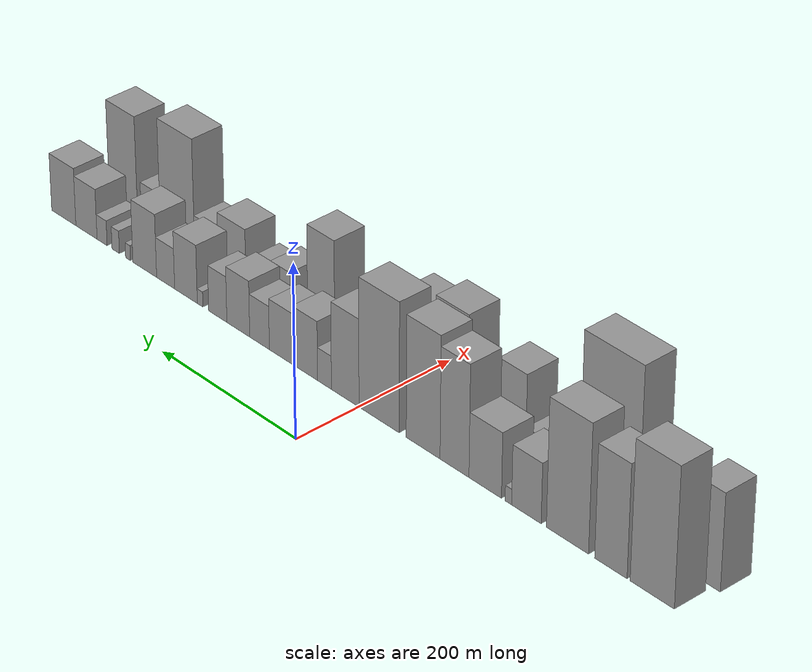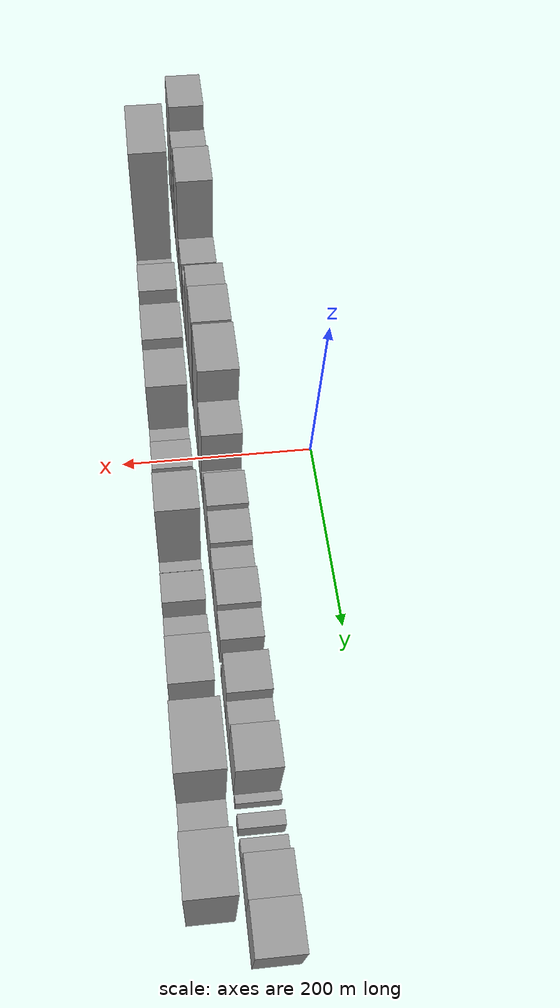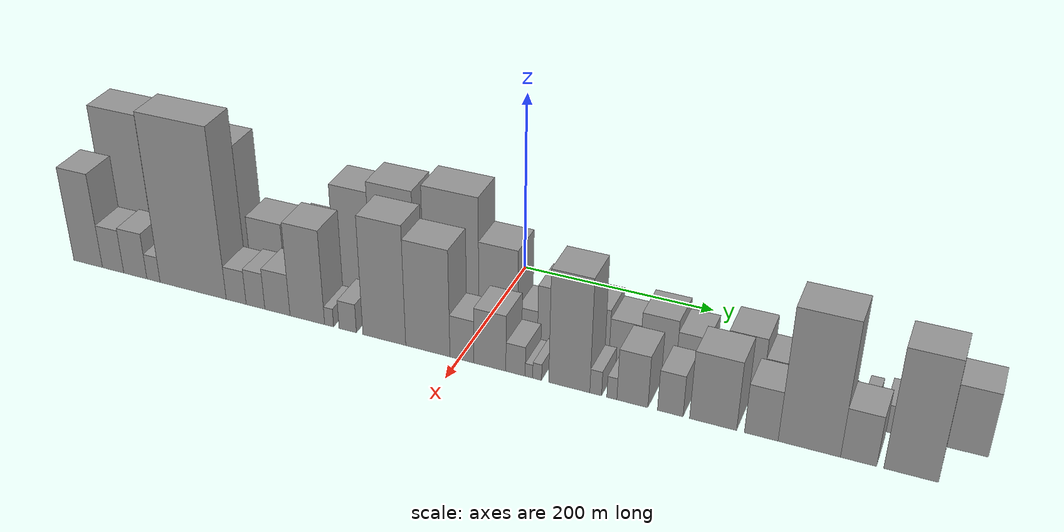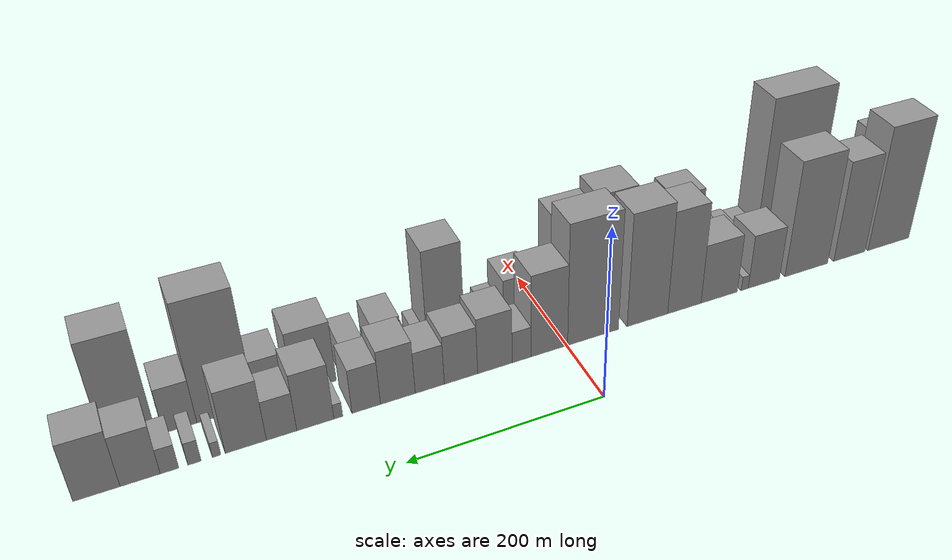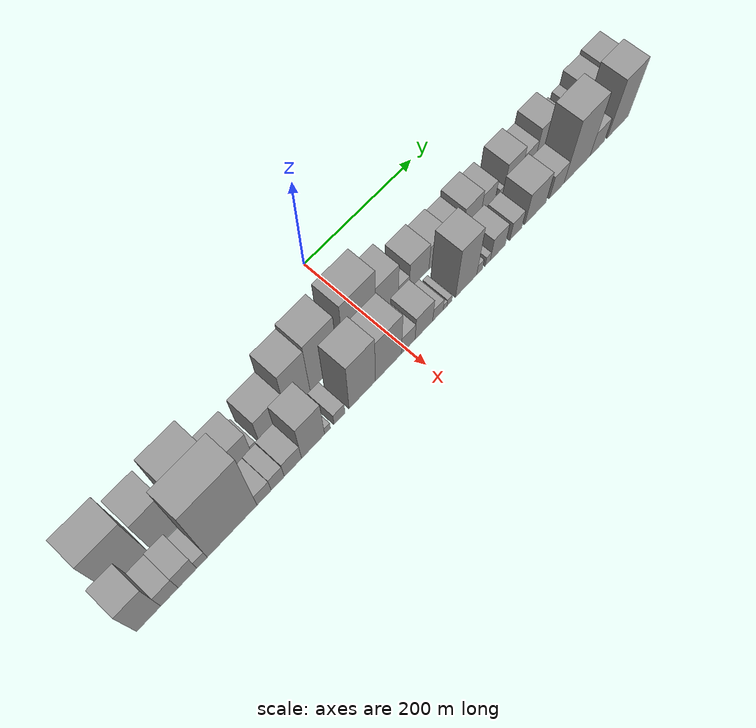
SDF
<sdf version="1.6">
 <world name="default">
  <scene>
   <sky><clouds><speed>12</speed></clouds></sky>
   <ambient>0.4 0.4 0.4 1</ambient>
   <background>0.7 0.7 0.7 1</background>
   <shadows>1</shadows>
  </scene>
  <gravity>0 0 -9.8066</gravity>
  <magnetic_field>6e-06 2.3e-05 -4.2e-05</magnetic_field>
  <physics default="0" name="default_physics" type="ode">
   <ode>
    <solver>
     <type>quick</type>
     <iters>10</iters>
     <sor>1.0</sor>
     <use_dynamic_moi_rescaling>0</use_dynamic_moi_rescaling>
    </solver>
    <constraints>
     <cfm>0</cfm>
     <erp>0.2</erp>
     <contact_max_correcting_vel>100</contact_max_correcting_vel>
     <contact_surface_layer>0.001</contact_surface_layer>
    </constraints>
   </ode>
   <max_step_size>0.004</max_step_size>
   <real_time_factor>1</real_time_factor>
   <real_time_update_rate>250</real_time_update_rate>
  </physics>
  <light name="sun" type="directional">
   <pose>0 0 10 0 0 0</pose>
   <diffuse>0.8 0.8 0.8 1</diffuse>
   <specular>0.2 0.2 0.2 1</specular>
   <attenuation>
    <range>1000</range>
    <constant>0.9</constant>
    <linear>0.01</linear>
    <quadratic>0.001</quadratic>
   </attenuation>
   <direction>-0.5 0.1 -0.9</direction>
  </light>
  <model name="building_1">
   <static>1</static>
   <pose>100.0000 -399.7099 0 0.000000 0.000000 0.000000</pose>
   <link name="link">
    <pose>0 0 79.50 0 0 0</pose>
    <collision name="collision"><geometry><box><size>40.0000 56.5801 159.0000</size></box></geometry></collision>
    <visual name="visual">
     <cast_shadows>0</cast_shadows>
     <geometry><box><size>40.0000 56.5801 159.0000</size></box></geometry>
     <material>
      <script>
       <uri>model://grey_wall/materials/scripts</uri>
       <uri>model://grey_wall/materials/textures</uri>
       <name>vrc/grey_wall</name>
      </script>
     </material>
    </visual>
   </link>
  </model>
  <model name="building_2">
   <static>1</static>
   <pose>100.0000 -346.3536 0 0.000000 0.000000 0.000000</pose>
   <link name="link">
    <pose>0 0 64.50 0 0 0</pose>
    <collision name="collision"><geometry><box><size>40.0000 42.1325 129.0000</size></box></geometry></collision>
    <visual name="visual">
     <cast_shadows>0</cast_shadows>
     <geometry><box><size>40.0000 42.1325 129.0000</size></box></geometry>
     <material>
      <script>
       <uri>model://grey_wall/materials/scripts</uri>
       <uri>model://grey_wall/materials/textures</uri>
       <name>vrc/grey_wall</name>
      </script>
     </material>
    </visual>
   </link>
  </model>
  <model name="building_3">
   <static>1</static>
   <pose>100.0000 -289.3417 0 0.000000 0.000000 0.000000</pose>
   <link name="link">
    <pose>0 0 73.50 0 0 0</pose>
    <collision name="collision"><geometry><box><size>40.0000 55.8913 147.0000</size></box></geometry></collision>
    <visual name="visual">
     <cast_shadows>0</cast_shadows>
     <geometry><box><size>40.0000 55.8913 147.0000</size></box></geometry>
     <material>
      <script>
       <uri>model://grey_wall/materials/scripts</uri>
       <uri>model://grey_wall/materials/textures</uri>
       <name>vrc/grey_wall</name>
      </script>
     </material>
    </visual>
   </link>
  </model>
  <model name="building_4">
   <static>1</static>
   <pose>100.0000 -234.5111 0 0.000000 0.000000 0.000000</pose>
   <link name="link">
    <pose>0 0 34.50 0 0 0</pose>
    <collision name="collision"><geometry><box><size>40.0000 39.7700 69.0000</size></box></geometry></collision>
    <visual name="visual">
     <cast_shadows>0</cast_shadows>
     <geometry><box><size>40.0000 39.7700 69.0000</size></box></geometry>
     <material>
      <script>
       <uri>model://grey_wall/materials/scripts</uri>
       <uri>model://grey_wall/materials/textures</uri>
       <name>vrc/grey_wall</name>
      </script>
     </material>
    </visual>
   </link>
  </model>
  <model name="building_5">
   <static>1</static>
   <pose>100.0000 -210.2115 0 0.000000 0.000000 0.000000</pose>
   <link name="link">
    <pose>0 0 9.00 0 0 0</pose>
    <collision name="collision"><geometry><box><size>40.0000 8.8292 18.0000</size></box></geometry></collision>
    <visual name="visual">
     <cast_shadows>0</cast_shadows>
     <geometry><box><size>40.0000 8.8292 18.0000</size></box></geometry>
     <material>
      <script>
       <uri>model://grey_wall/materials/scripts</uri>
       <uri>model://grey_wall/materials/textures</uri>
       <name>vrc/grey_wall</name>
      </script>
     </material>
    </visual>
   </link>
  </model>
  <model name="building_6">
   <static>1</static>
   <pose>100.0000 -178.4831 0 0.000000 0.000000 0.000000</pose>
   <link name="link">
    <pose>0 0 37.50 0 0 0</pose>
    <collision name="collision"><geometry><box><size>40.0000 44.6277 75.0000</size></box></geometry></collision>
    <visual name="visual">
     <cast_shadows>0</cast_shadows>
     <geometry><box><size>40.0000 44.6277 75.0000</size></box></geometry>
     <material>
      <script>
       <uri>model://grey_wall/materials/scripts</uri>
       <uri>model://grey_wall/materials/textures</uri>
       <name>vrc/grey_wall</name>
      </script>
     </material>
    </visual>
   </link>
  </model>
  <model name="building_7">
   <static>1</static>
   <pose>100.0000 -136.0635 0 0.000000 0.000000 0.000000</pose>
   <link name="link">
    <pose>0 0 64.50 0 0 0</pose>
    <collision name="collision"><geometry><box><size>40.0000 40.2114 129.0000</size></box></geometry></collision>
    <visual name="visual">
     <cast_shadows>0</cast_shadows>
     <geometry><box><size>40.0000 40.2114 129.0000</size></box></geometry>
     <material>
      <script>
       <uri>model://grey_wall/materials/scripts</uri>
       <uri>model://grey_wall/materials/textures</uri>
       <name>vrc/grey_wall</name>
      </script>
     </material>
    </visual>
   </link>
  </model>
  <model name="building_8">
   <static>1</static>
   <pose>100.0000 -92.1306 0 0.000000 0.000000 0.000000</pose>
   <link name="link">
    <pose>0 0 70.50 0 0 0</pose>
    <collision name="collision"><geometry><box><size>40.0000 47.6545 141.0000</size></box></geometry></collision>
    <visual name="visual">
     <cast_shadows>0</cast_shadows>
     <geometry><box><size>40.0000 47.6545 141.0000</size></box></geometry>
     <material>
      <script>
       <uri>model://grey_wall/materials/scripts</uri>
       <uri>model://grey_wall/materials/textures</uri>
       <name>vrc/grey_wall</name>
      </script>
     </material>
    </visual>
   </link>
  </model>
  <model name="building_9">
   <static>1</static>
   <pose>100.0000 -29.4256 0 0.000000 0.000000 0.000000</pose>
   <link name="link">
    <pose>0 0 75.00 0 0 0</pose>
    <collision name="collision"><geometry><box><size>40.0000 57.7554 150.0000</size></box></geometry></collision>
    <visual name="visual">
     <cast_shadows>0</cast_shadows>
     <geometry><box><size>40.0000 57.7554 150.0000</size></box></geometry>
     <material>
      <script>
       <uri>model://grey_wall/materials/scripts</uri>
       <uri>model://grey_wall/materials/textures</uri>
       <name>vrc/grey_wall</name>
      </script>
     </material>
    </visual>
   </link>
  </model>
  <model name="building_10">
   <static>1</static>
   <pose>100.0000 19.5741 0 0.000000 0.000000 0.000000</pose>
   <link name="link">
    <pose>0 0 51.00 0 0 0</pose>
    <collision name="collision"><geometry><box><size>40.0000 40.2440 102.0000</size></box></geometry></collision>
    <visual name="visual">
     <cast_shadows>0</cast_shadows>
     <geometry><box><size>40.0000 40.2440 102.0000</size></box></geometry>
     <material>
      <script>
       <uri>model://grey_wall/materials/scripts</uri>
       <uri>model://grey_wall/materials/textures</uri>
       <name>vrc/grey_wall</name>
      </script>
     </material>
    </visual>
   </link>
  </model>
  <model name="building_11">
   <static>1</static>
   <pose>100.0000 49.9084 0 0.000000 0.000000 0.000000</pose>
   <link name="link">
    <pose>0 0 19.50 0 0 0</pose>
    <collision name="collision"><geometry><box><size>40.0000 20.4247 39.0000</size></box></geometry></collision>
    <visual name="visual">
     <cast_shadows>0</cast_shadows>
     <geometry><box><size>40.0000 20.4247 39.0000</size></box></geometry>
     <material>
      <script>
       <uri>model://grey_wall/materials/scripts</uri>
       <uri>model://grey_wall/materials/textures</uri>
       <name>vrc/grey_wall</name>
      </script>
     </material>
    </visual>
   </link>
  </model>
  <model name="building_12">
   <static>1</static>
   <pose>100.0000 78.6043 0 0.000000 0.000000 0.000000</pose>
   <link name="link">
    <pose>0 0 34.50 0 0 0</pose>
    <collision name="collision"><geometry><box><size>40.0000 36.9671 69.0000</size></box></geometry></collision>
    <visual name="visual">
     <cast_shadows>0</cast_shadows>
     <geometry><box><size>40.0000 36.9671 69.0000</size></box></geometry>
     <material>
      <script>
       <uri>model://grey_wall/materials/scripts</uri>
       <uri>model://grey_wall/materials/textures</uri>
       <name>vrc/grey_wall</name>
      </script>
     </material>
    </visual>
   </link>
  </model>
  <model name="building_13">
   <static>1</static>
   <pose>100.0000 114.5251 0 0.000000 0.000000 0.000000</pose>
   <link name="link">
    <pose>0 0 30.00 0 0 0</pose>
    <collision name="collision"><geometry><box><size>40.0000 34.8745 60.0000</size></box></geometry></collision>
    <visual name="visual">
     <cast_shadows>0</cast_shadows>
     <geometry><box><size>40.0000 34.8745 60.0000</size></box></geometry>
     <material>
      <script>
       <uri>model://grey_wall/materials/scripts</uri>
       <uri>model://grey_wall/materials/textures</uri>
       <name>vrc/grey_wall</name>
      </script>
     </material>
    </visual>
   </link>
  </model>
  <model name="building_14">
   <static>1</static>
   <pose>100.0000 146.8696 0 0.000000 0.000000 0.000000</pose>
   <link name="link">
    <pose>0 0 25.50 0 0 0</pose>
    <collision name="collision"><geometry><box><size>40.0000 29.8143 51.0000</size></box></geometry></collision>
    <visual name="visual">
     <cast_shadows>0</cast_shadows>
     <geometry><box><size>40.0000 29.8143 51.0000</size></box></geometry>
     <material>
      <script>
       <uri>model://grey_wall/materials/scripts</uri>
       <uri>model://grey_wall/materials/textures</uri>
       <name>vrc/grey_wall</name>
      </script>
     </material>
    </visual>
   </link>
  </model>
  <model name="building_15">
   <static>1</static>
   <pose>100.0000 179.2516 0 0.000000 0.000000 0.000000</pose>
   <link name="link">
    <pose>0 0 33.00 0 0 0</pose>
    <collision name="collision"><geometry><box><size>40.0000 34.9497 66.0000</size></box></geometry></collision>
    <visual name="visual">
     <cast_shadows>0</cast_shadows>
     <geometry><box><size>40.0000 34.9497 66.0000</size></box></geometry>
     <material>
      <script>
       <uri>model://grey_wall/materials/scripts</uri>
       <uri>model://grey_wall/materials/textures</uri>
       <name>vrc/grey_wall</name>
      </script>
     </material>
    </visual>
   </link>
  </model>
  <model name="building_16">
   <static>1</static>
   <pose>100.0000 210.7764 0 0.000000 0.000000 0.000000</pose>
   <link name="link">
    <pose>0 0 27.00 0 0 0</pose>
    <collision name="collision"><geometry><box><size>40.0000 28.0998 54.0000</size></box></geometry></collision>
    <visual name="visual">
     <cast_shadows>0</cast_shadows>
     <geometry><box><size>40.0000 28.0998 54.0000</size></box></geometry>
     <material>
      <script>
       <uri>model://grey_wall/materials/scripts</uri>
       <uri>model://grey_wall/materials/textures</uri>
       <name>vrc/grey_wall</name>
      </script>
     </material>
    </visual>
   </link>
  </model>
  <model name="building_17">
   <static>1</static>
   <pose>100.0000 238.1311 0 0.000000 0.000000 0.000000</pose>
   <link name="link">
    <pose>0 0 9.00 0 0 0</pose>
    <collision name="collision"><geometry><box><size>40.0000 8.6098 18.0000</size></box></geometry></collision>
    <visual name="visual">
     <cast_shadows>0</cast_shadows>
     <geometry><box><size>40.0000 8.6098 18.0000</size></box></geometry>
     <material>
      <script>
       <uri>model://grey_wall/materials/scripts</uri>
       <uri>model://grey_wall/materials/textures</uri>
       <name>vrc/grey_wall</name>
      </script>
     </material>
    </visual>
   </link>
  </model>
  <model name="building_18">
   <static>1</static>
   <pose>100.0000 260.2070 0 0.000000 0.000000 0.000000</pose>
   <link name="link">
    <pose>0 0 34.50 0 0 0</pose>
    <collision name="collision"><geometry><box><size>40.0000 35.5419 69.0000</size></box></geometry></collision>
    <visual name="visual">
     <cast_shadows>0</cast_shadows>
     <geometry><box><size>40.0000 35.5419 69.0000</size></box></geometry>
     <material>
      <script>
       <uri>model://grey_wall/materials/scripts</uri>
       <uri>model://grey_wall/materials/textures</uri>
       <name>vrc/grey_wall</name>
      </script>
     </material>
    </visual>
   </link>
  </model>
  <model name="building_19">
   <static>1</static>
   <pose>100.0000 292.2404 0 0.000000 0.000000 0.000000</pose>
   <link name="link">
    <pose>0 0 24.00 0 0 0</pose>
    <collision name="collision"><geometry><box><size>40.0000 28.5249 48.0000</size></box></geometry></collision>
    <visual name="visual">
     <cast_shadows>0</cast_shadows>
     <geometry><box><size>40.0000 28.5249 48.0000</size></box></geometry>
     <material>
      <script>
       <uri>model://grey_wall/materials/scripts</uri>
       <uri>model://grey_wall/materials/textures</uri>
       <name>vrc/grey_wall</name>
      </script>
     </material>
    </visual>
   </link>
  </model>
  <model name="building_20">
   <static>1</static>
   <pose>100.0000 325.4531 0 0.000000 0.000000 0.000000</pose>
   <link name="link">
    <pose>0 0 37.50 0 0 0</pose>
    <collision name="collision"><geometry><box><size>40.0000 37.9005 75.0000</size></box></geometry></collision>
    <visual name="visual">
     <cast_shadows>0</cast_shadows>
     <geometry><box><size>40.0000 37.9005 75.0000</size></box></geometry>
     <material>
      <script>
       <uri>model://grey_wall/materials/scripts</uri>
       <uri>model://grey_wall/materials/textures</uri>
       <name>vrc/grey_wall</name>
      </script>
     </material>
    </visual>
   </link>
  </model>
  <model name="building_21">
   <static>1</static>
   <pose>100.0000 352.2698 0 0.000000 0.000000 0.000000</pose>
   <link name="link">
    <pose>0 0 9.00 0 0 0</pose>
    <collision name="collision"><geometry><box><size>40.0000 7.7330 18.0000</size></box></geometry></collision>
    <visual name="visual">
     <cast_shadows>0</cast_shadows>
     <geometry><box><size>40.0000 7.7330 18.0000</size></box></geometry>
     <material>
      <script>
       <uri>model://grey_wall/materials/scripts</uri>
       <uri>model://grey_wall/materials/textures</uri>
       <name>vrc/grey_wall</name>
      </script>
     </material>
    </visual>
   </link>
  </model>
  <model name="building_22">
   <static>1</static>
   <pose>100.0000 372.1016 0 0.000000 0.000000 0.000000</pose>
   <link name="link">
    <pose>0 0 13.50 0 0 0</pose>
    <collision name="collision"><geometry><box><size>40.0000 11.9305 27.0000</size></box></geometry></collision>
    <visual name="visual">
     <cast_shadows>0</cast_shadows>
     <geometry><box><size>40.0000 11.9305 27.0000</size></box></geometry>
     <material>
      <script>
       <uri>model://grey_wall/materials/scripts</uri>
       <uri>model://grey_wall/materials/textures</uri>
       <name>vrc/grey_wall</name>
      </script>
     </material>
    </visual>
   </link>
  </model>
  <model name="building_23">
   <static>1</static>
   <pose>100.0000 394.2384 0 0.000000 0.000000 0.000000</pose>
   <link name="link">
    <pose>0 0 15.00 0 0 0</pose>
    <collision name="collision"><geometry><box><size>40.0000 16.3432 30.0000</size></box></geometry></collision>
    <visual name="visual">
     <cast_shadows>0</cast_shadows>
     <geometry><box><size>40.0000 16.3432 30.0000</size></box></geometry>
     <material>
      <script>
       <uri>model://grey_wall/materials/scripts</uri>
       <uri>model://grey_wall/materials/textures</uri>
       <name>vrc/grey_wall</name>
      </script>
     </material>
    </visual>
   </link>
  </model>
  <model name="building_24">
   <static>1</static>
   <pose>100.0000 419.7892 0 0.000000 0.000000 0.000000</pose>
   <link name="link">
    <pose>0 0 30.00 0 0 0</pose>
    <collision name="collision"><geometry><box><size>40.0000 34.7585 60.0000</size></box></geometry></collision>
    <visual name="visual">
     <cast_shadows>0</cast_shadows>
     <geometry><box><size>40.0000 34.7585 60.0000</size></box></geometry>
     <material>
      <script>
       <uri>model://grey_wall/materials/scripts</uri>
       <uri>model://grey_wall/materials/textures</uri>
       <name>vrc/grey_wall</name>
      </script>
     </material>
    </visual>
   </link>
  </model>
  <model name="building_25">
   <static>1</static>
   <pose>100.0000 457.1596 0 0.000000 0.000000 0.000000</pose>
   <link name="link">
    <pose>0 0 34.50 0 0 0</pose>
    <collision name="collision"><geometry><box><size>40.0000 39.9823 69.0000</size></box></geometry></collision>
    <visual name="visual">
     <cast_shadows>0</cast_shadows>
     <geometry><box><size>40.0000 39.9823 69.0000</size></box></geometry>
     <material>
      <script>
       <uri>model://grey_wall/materials/scripts</uri>
       <uri>model://grey_wall/materials/textures</uri>
       <name>vrc/grey_wall</name>
      </script>
     </material>
    </visual>
   </link>
  </model>
  <model name="building_26">
   <static>1</static>
   <pose>149.0000 -420.2003 0 0.000000 0.000000 0.000000</pose>
   <link name="link">
    <pose>0 0 55.50 0 0 0</pose>
    <collision name="collision"><geometry><box><size>40.0000 35.5995 111.0000</size></box></geometry></collision>
    <visual name="visual">
     <cast_shadows>0</cast_shadows>
     <geometry><box><size>40.0000 35.5995 111.0000</size></box></geometry>
     <material>
      <script>
       <uri>model://grey_wall/materials/scripts</uri>
       <uri>model://grey_wall/materials/textures</uri>
       <name>vrc/grey_wall</name>
      </script>
     </material>
    </visual>
   </link>
  </model>
  <model name="building_27">
   <static>1</static>
   <pose>149.0000 -389.3359 0 0.000000 0.000000 0.000000</pose>
   <link name="link">
    <pose>0 0 25.50 0 0 0</pose>
    <collision name="collision"><geometry><box><size>40.0000 26.1293 51.0000</size></box></geometry></collision>
    <visual name="visual">
     <cast_shadows>0</cast_shadows>
     <geometry><box><size>40.0000 26.1293 51.0000</size></box></geometry>
     <material>
      <script>
       <uri>model://grey_wall/materials/scripts</uri>
       <uri>model://grey_wall/materials/textures</uri>
       <name>vrc/grey_wall</name>
      </script>
     </material>
    </visual>
   </link>
  </model>
  <model name="building_28">
   <static>1</static>
   <pose>149.0000 -362.1957 0 0.000000 0.000000 0.000000</pose>
   <link name="link">
    <pose>0 0 27.00 0 0 0</pose>
    <collision name="collision"><geometry><box><size>40.0000 28.1511 54.0000</size></box></geometry></collision>
    <visual name="visual">
     <cast_shadows>0</cast_shadows>
     <geometry><box><size>40.0000 28.1511 54.0000</size></box></geometry>
     <material>
      <script>
       <uri>model://grey_wall/materials/scripts</uri>
       <uri>model://grey_wall/materials/textures</uri>
       <name>vrc/grey_wall</name>
      </script>
     </material>
    </visual>
   </link>
  </model>
  <model name="building_29">
   <static>1</static>
   <pose>149.0000 -340.1942 0 0.000000 0.000000 0.000000</pose>
   <link name="link">
    <pose>0 0 15.00 0 0 0</pose>
    <collision name="collision"><geometry><box><size>40.0000 15.8519 30.0000</size></box></geometry></collision>
    <visual name="visual">
     <cast_shadows>0</cast_shadows>
     <geometry><box><size>40.0000 15.8519 30.0000</size></box></geometry>
     <material>
      <script>
       <uri>model://grey_wall/materials/scripts</uri>
       <uri>model://grey_wall/materials/textures</uri>
       <name>vrc/grey_wall</name>
      </script>
     </material>
    </visual>
   </link>
  </model>
  <model name="building_30">
   <static>1</static>
   <pose>149.0000 -293.2935 0 0.000000 0.000000 0.000000</pose>
   <link name="link">
    <pose>0 0 97.50 0 0 0</pose>
    <collision name="collision"><geometry><box><size>40.0000 77.9496 195.0000</size></box></geometry></collision>
    <visual name="visual">
     <cast_shadows>0</cast_shadows>
     <geometry><box><size>40.0000 77.9496 195.0000</size></box></geometry>
     <material>
      <script>
       <uri>model://grey_wall/materials/scripts</uri>
       <uri>model://grey_wall/materials/textures</uri>
       <name>vrc/grey_wall</name>
      </script>
     </material>
    </visual>
   </link>
  </model>
  <model name="building_31">
   <static>1</static>
   <pose>149.0000 -242.8277 0 0.000000 0.000000 0.000000</pose>
   <link name="link">
    <pose>0 0 19.50 0 0 0</pose>
    <collision name="collision"><geometry><box><size>40.0000 22.9820 39.0000</size></box></geometry></collision>
    <visual name="visual">
     <cast_shadows>0</cast_shadows>
     <geometry><box><size>40.0000 22.9820 39.0000</size></box></geometry>
     <material>
      <script>
       <uri>model://grey_wall/materials/scripts</uri>
       <uri>model://grey_wall/materials/textures</uri>
       <name>vrc/grey_wall</name>
      </script>
     </material>
    </visual>
   </link>
  </model>
  <model name="building_32">
   <static>1</static>
   <pose>149.0000 -220.6813 0 0.000000 0.000000 0.000000</pose>
   <link name="link">
    <pose>0 0 21.00 0 0 0</pose>
    <collision name="collision"><geometry><box><size>40.0000 21.3107 42.0000</size></box></geometry></collision>
    <visual name="visual">
     <cast_shadows>0</cast_shadows>
     <geometry><box><size>40.0000 21.3107 42.0000</size></box></geometry>
     <material>
      <script>
       <uri>model://grey_wall/materials/scripts</uri>
       <uri>model://grey_wall/materials/textures</uri>
       <name>vrc/grey_wall</name>
      </script>
     </material>
    </visual>
   </link>
  </model>
  <model name="building_33">
   <static>1</static>
   <pose>149.0000 -195.8203 0 0.000000 0.000000 0.000000</pose>
   <link name="link">
    <pose>0 0 24.00 0 0 0</pose>
    <collision name="collision"><geometry><box><size>40.0000 28.4114 48.0000</size></box></geometry></collision>
    <visual name="visual">
     <cast_shadows>0</cast_shadows>
     <geometry><box><size>40.0000 28.4114 48.0000</size></box></geometry>
     <material>
      <script>
       <uri>model://grey_wall/materials/scripts</uri>
       <uri>model://grey_wall/materials/textures</uri>
       <name>vrc/grey_wall</name>
      </script>
     </material>
    </visual>
   </link>
  </model>
  <model name="building_34">
   <static>1</static>
   <pose>149.0000 -162.3950 0 0.000000 0.000000 0.000000</pose>
   <link name="link">
    <pose>0 0 54.00 0 0 0</pose>
    <collision name="collision"><geometry><box><size>40.0000 38.4390 108.0000</size></box></geometry></collision>
    <visual name="visual">
     <cast_shadows>0</cast_shadows>
     <geometry><box><size>40.0000 38.4390 108.0000</size></box></geometry>
     <material>
      <script>
       <uri>model://grey_wall/materials/scripts</uri>
       <uri>model://grey_wall/materials/textures</uri>
       <name>vrc/grey_wall</name>
      </script>
     </material>
    </visual>
   </link>
  </model>
  <model name="building_35">
   <static>1</static>
   <pose>149.0000 -138.2565 0 0.000000 0.000000 0.000000</pose>
   <link name="link">
    <pose>0 0 10.50 0 0 0</pose>
    <collision name="collision"><geometry><box><size>40.0000 9.8380 21.0000</size></box></geometry></collision>
    <visual name="visual">
     <cast_shadows>0</cast_shadows>
     <geometry><box><size>40.0000 9.8380 21.0000</size></box></geometry>
     <material>
      <script>
       <uri>model://grey_wall/materials/scripts</uri>
       <uri>model://grey_wall/materials/textures</uri>
       <name>vrc/grey_wall</name>
      </script>
     </material>
    </visual>
   </link>
  </model>
  <model name="building_36">
   <static>1</static>
   <pose>149.0000 -117.9132 0 0.000000 0.000000 0.000000</pose>
   <link name="link">
    <pose>0 0 16.50 0 0 0</pose>
    <collision name="collision"><geometry><box><size>40.0000 18.8486 33.0000</size></box></geometry></collision>
    <visual name="visual">
     <cast_shadows>0</cast_shadows>
     <geometry><box><size>40.0000 18.8486 33.0000</size></box></geometry>
     <material>
      <script>
       <uri>model://grey_wall/materials/scripts</uri>
       <uri>model://grey_wall/materials/textures</uri>
       <name>vrc/grey_wall</name>
      </script>
     </material>
    </visual>
   </link>
  </model>
  <model name="building_37">
   <static>1</static>
   <pose>149.0000 -78.5701 0 0.000000 0.000000 0.000000</pose>
   <link name="link">
    <pose>0 0 67.50 0 0 0</pose>
    <collision name="collision"><geometry><box><size>40.0000 45.8377 135.0000</size></box></geometry></collision>
    <visual name="visual">
     <cast_shadows>0</cast_shadows>
     <geometry><box><size>40.0000 45.8377 135.0000</size></box></geometry>
     <material>
      <script>
       <uri>model://grey_wall/materials/scripts</uri>
       <uri>model://grey_wall/materials/textures</uri>
       <name>vrc/grey_wall</name>
      </script>
     </material>
    </visual>
   </link>
  </model>
  <model name="building_38">
   <static>1</static>
   <pose>149.0000 -32.5453 0 0.000000 0.000000 0.000000</pose>
   <link name="link">
    <pose>0 0 60.00 0 0 0</pose>
    <collision name="collision"><geometry><box><size>40.0000 46.2120 120.0000</size></box></geometry></collision>
    <visual name="visual">
     <cast_shadows>0</cast_shadows>
     <geometry><box><size>40.0000 46.2120 120.0000</size></box></geometry>
     <material>
      <script>
       <uri>model://grey_wall/materials/scripts</uri>
       <uri>model://grey_wall/materials/textures</uri>
       <name>vrc/grey_wall</name>
      </script>
     </material>
    </visual>
   </link>
  </model>
  <model name="building_39">
   <static>1</static>
   <pose>149.0000 2.9151 0 0.000000 0.000000 0.000000</pose>
   <link name="link">
    <pose>0 0 24.00 0 0 0</pose>
    <collision name="collision"><geometry><box><size>40.0000 24.7088 48.0000</size></box></geometry></collision>
    <visual name="visual">
     <cast_shadows>0</cast_shadows>
     <geometry><box><size>40.0000 24.7088 48.0000</size></box></geometry>
     <material>
      <script>
       <uri>model://grey_wall/materials/scripts</uri>
       <uri>model://grey_wall/materials/textures</uri>
       <name>vrc/grey_wall</name>
      </script>
     </material>
    </visual>
   </link>
  </model>
  <model name="building_40">
   <static>1</static>
   <pose>149.0000 31.4612 0 0.000000 0.000000 0.000000</pose>
   <link name="link">
    <pose>0 0 31.50 0 0 0</pose>
    <collision name="collision"><geometry><box><size>40.0000 32.3832 63.0000</size></box></geometry></collision>
    <visual name="visual">
     <cast_shadows>0</cast_shadows>
     <geometry><box><size>40.0000 32.3832 63.0000</size></box></geometry>
     <material>
      <script>
       <uri>model://grey_wall/materials/scripts</uri>
       <uri>model://grey_wall/materials/textures</uri>
       <name>vrc/grey_wall</name>
      </script>
     </material>
    </visual>
   </link>
  </model>
  <model name="building_41">
   <static>1</static>
   <pose>149.0000 57.3391 0 0.000000 0.000000 0.000000</pose>
   <link name="link">
    <pose>0 0 16.50 0 0 0</pose>
    <collision name="collision"><geometry><box><size>40.0000 19.3725 33.0000</size></box></geometry></collision>
    <visual name="visual">
     <cast_shadows>0</cast_shadows>
     <geometry><box><size>40.0000 19.3725 33.0000</size></box></geometry>
     <material>
      <script>
       <uri>model://grey_wall/materials/scripts</uri>
       <uri>model://grey_wall/materials/textures</uri>
       <name>vrc/grey_wall</name>
      </script>
     </material>
    </visual>
   </link>
  </model>
  <model name="building_42">
   <static>1</static>
   <pose>149.0000 70.7696 0 0.000000 0.000000 0.000000</pose>
   <link name="link">
    <pose>0 0 7.50 0 0 0</pose>
    <collision name="collision"><geometry><box><size>40.0000 7.4886 15.0000</size></box></geometry></collision>
    <visual name="visual">
     <cast_shadows>0</cast_shadows>
     <geometry><box><size>40.0000 7.4886 15.0000</size></box></geometry>
     <material>
      <script>
       <uri>model://grey_wall/materials/scripts</uri>
       <uri>model://grey_wall/materials/textures</uri>
       <name>vrc/grey_wall</name>
      </script>
     </material>
    </visual>
   </link>
  </model>
  <model name="building_43">
   <static>1</static>
   <pose>149.0000 78.9026 0 0.000000 0.000000 0.000000</pose>
   <link name="link">
    <pose>0 0 9.00 0 0 0</pose>
    <collision name="collision"><geometry><box><size>40.0000 8.7774 18.0000</size></box></geometry></collision>
    <visual name="visual">
     <cast_shadows>0</cast_shadows>
     <geometry><box><size>40.0000 8.7774 18.0000</size></box></geometry>
     <material>
      <script>
       <uri>model://grey_wall/materials/scripts</uri>
       <uri>model://grey_wall/materials/textures</uri>
       <name>vrc/grey_wall</name>
      </script>
     </material>
    </visual>
   </link>
  </model>
  <model name="building_44">
   <static>1</static>
   <pose>149.0000 110.3941 0 0.000000 0.000000 0.000000</pose>
   <link name="link">
    <pose>0 0 63.00 0 0 0</pose>
    <collision name="collision"><geometry><box><size>40.0000 40.2055 126.0000</size></box></geometry></collision>
    <visual name="visual">
     <cast_shadows>0</cast_shadows>
     <geometry><box><size>40.0000 40.2055 126.0000</size></box></geometry>
     <material>
      <script>
       <uri>model://grey_wall/materials/scripts</uri>
       <uri>model://grey_wall/materials/textures</uri>
       <name>vrc/grey_wall</name>
      </script>
     </material>
    </visual>
   </link>
  </model>
  <model name="building_45">
   <static>1</static>
   <pose>149.0000 136.1713 0 0.000000 0.000000 0.000000</pose>
   <link name="link">
    <pose>0 0 13.50 0 0 0</pose>
    <collision name="collision"><geometry><box><size>40.0000 11.3490 27.0000</size></box></geometry></collision>
    <visual name="visual">
     <cast_shadows>0</cast_shadows>
     <geometry><box><size>40.0000 11.3490 27.0000</size></box></geometry>
     <material>
      <script>
       <uri>model://grey_wall/materials/scripts</uri>
       <uri>model://grey_wall/materials/textures</uri>
       <name>vrc/grey_wall</name>
      </script>
     </material>
    </visual>
   </link>
  </model>
  <model name="building_46">
   <static>1</static>
   <pose>149.0000 151.6759 0 0.000000 0.000000 0.000000</pose>
   <link name="link">
    <pose>0 0 12.00 0 0 0</pose>
    <collision name="collision"><geometry><box><size>40.0000 9.6601 24.0000</size></box></geometry></collision>
    <visual name="visual">
     <cast_shadows>0</cast_shadows>
     <geometry><box><size>40.0000 9.6601 24.0000</size></box></geometry>
     <material>
      <script>
       <uri>model://grey_wall/materials/scripts</uri>
       <uri>model://grey_wall/materials/textures</uri>
       <name>vrc/grey_wall</name>
      </script>
     </material>
    </visual>
   </link>
  </model>
  <model name="building_47">
   <static>1</static>
   <pose>149.0000 171.2269 0 0.000000 0.000000 0.000000</pose>
   <link name="link">
    <pose>0 0 28.50 0 0 0</pose>
    <collision name="collision"><geometry><box><size>40.0000 29.4419 57.0000</size></box></geometry></collision>
    <visual name="visual">
     <cast_shadows>0</cast_shadows>
     <geometry><box><size>40.0000 29.4419 57.0000</size></box></geometry>
     <material>
      <script>
       <uri>model://grey_wall/materials/scripts</uri>
       <uri>model://grey_wall/materials/textures</uri>
       <name>vrc/grey_wall</name>
      </script>
     </material>
    </visual>
   </link>
  </model>
  <model name="building_48">
   <static>1</static>
   <pose>149.0000 206.8574 0 0.000000 0.000000 0.000000</pose>
   <link name="link">
    <pose>0 0 22.50 0 0 0</pose>
    <collision name="collision"><geometry><box><size>40.0000 23.8192 45.0000</size></box></geometry></collision>
    <visual name="visual">
     <cast_shadows>0</cast_shadows>
     <geometry><box><size>40.0000 23.8192 45.0000</size></box></geometry>
     <material>
      <script>
       <uri>model://grey_wall/materials/scripts</uri>
       <uri>model://grey_wall/materials/textures</uri>
       <name>vrc/grey_wall</name>
      </script>
     </material>
    </visual>
   </link>
  </model>
  <model name="building_49">
   <static>1</static>
   <pose>149.0000 246.2679 0 0.000000 0.000000 0.000000</pose>
   <link name="link">
    <pose>0 0 37.50 0 0 0</pose>
    <collision name="collision"><geometry><box><size>40.0000 43.0018 75.0000</size></box></geometry></collision>
    <visual name="visual">
     <cast_shadows>0</cast_shadows>
     <geometry><box><size>40.0000 43.0018 75.0000</size></box></geometry>
     <material>
      <script>
       <uri>model://grey_wall/materials/scripts</uri>
       <uri>model://grey_wall/materials/textures</uri>
       <name>vrc/grey_wall</name>
      </script>
     </material>
    </visual>
   </link>
  </model>
  <model name="building_50">
   <static>1</static>
   <pose>149.0000 289.7875 0 0.000000 0.000000 0.000000</pose>
   <link name="link">
    <pose>0 0 27.00 0 0 0</pose>
    <collision name="collision"><geometry><box><size>40.0000 30.0374 54.0000</size></box></geometry></collision>
    <visual name="visual">
     <cast_shadows>0</cast_shadows>
     <geometry><box><size>40.0000 30.0374 54.0000</size></box></geometry>
     <material>
      <script>
       <uri>model://grey_wall/materials/scripts</uri>
       <uri>model://grey_wall/materials/textures</uri>
       <name>vrc/grey_wall</name>
      </script>
     </material>
    </visual>
   </link>
  </model>
  <model name="building_51">
   <static>1</static>
   <pose>149.0000 332.1109 0 0.000000 0.000000 0.000000</pose>
   <link name="link">
    <pose>0 0 72.00 0 0 0</pose>
    <collision name="collision"><geometry><box><size>40.0000 54.6095 144.0000</size></box></geometry></collision>
    <visual name="visual">
     <cast_shadows>0</cast_shadows>
     <geometry><box><size>40.0000 54.6095 144.0000</size></box></geometry>
     <material>
      <script>
       <uri>model://grey_wall/materials/scripts</uri>
       <uri>model://grey_wall/materials/textures</uri>
       <name>vrc/grey_wall</name>
      </script>
     </material>
    </visual>
   </link>
  </model>
  <model name="building_52">
   <static>1</static>
   <pose>149.0000 374.8829 0 0.000000 0.000000 0.000000</pose>
   <link name="link">
    <pose>0 0 27.00 0 0 0</pose>
    <collision name="collision"><geometry><box><size>40.0000 30.9345 54.0000</size></box></geometry></collision>
    <visual name="visual">
     <cast_shadows>0</cast_shadows>
     <geometry><box><size>40.0000 30.9345 54.0000</size></box></geometry>
     <material>
      <script>
       <uri>model://grey_wall/materials/scripts</uri>
       <uri>model://grey_wall/materials/textures</uri>
       <name>vrc/grey_wall</name>
      </script>
     </material>
    </visual>
   </link>
  </model>
  <model name="building_53">
   <static>1</static>
   <pose>149.0000 419.2521 0 0.000000 0.000000 0.000000</pose>
   <link name="link">
    <pose>0 0 64.50 0 0 0</pose>
    <collision name="collision"><geometry><box><size>40.0000 45.8039 129.0000</size></box></geometry></collision>
    <visual name="visual">
     <cast_shadows>0</cast_shadows>
     <geometry><box><size>40.0000 45.8039 129.0000</size></box></geometry>
     <material>
      <script>
       <uri>model://grey_wall/materials/scripts</uri>
       <uri>model://grey_wall/materials/textures</uri>
       <name>vrc/grey_wall</name>
      </script>
     </material>
    </visual>
   </link>
  </model>
 </world>
</sdf>
